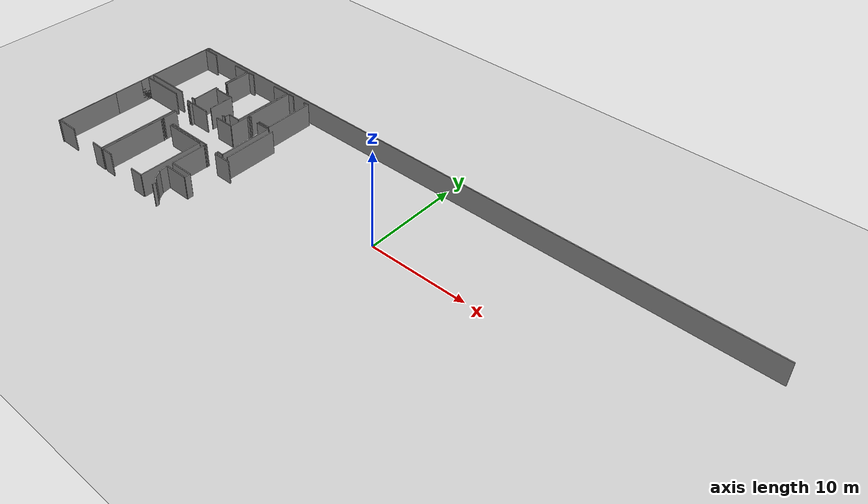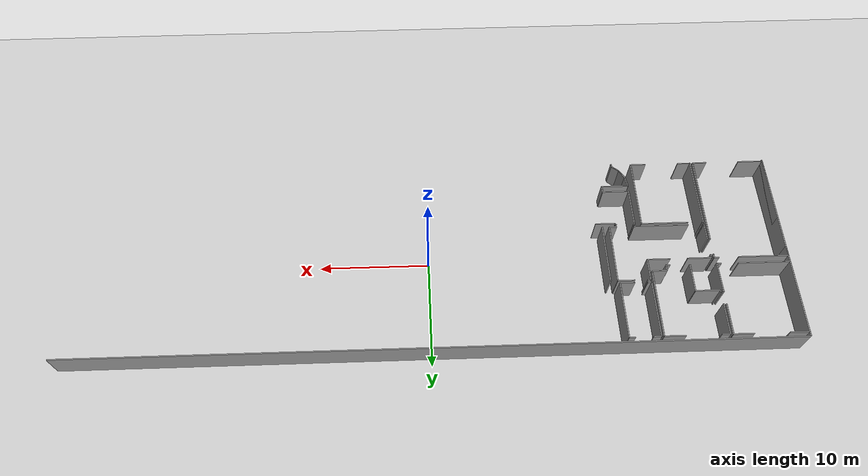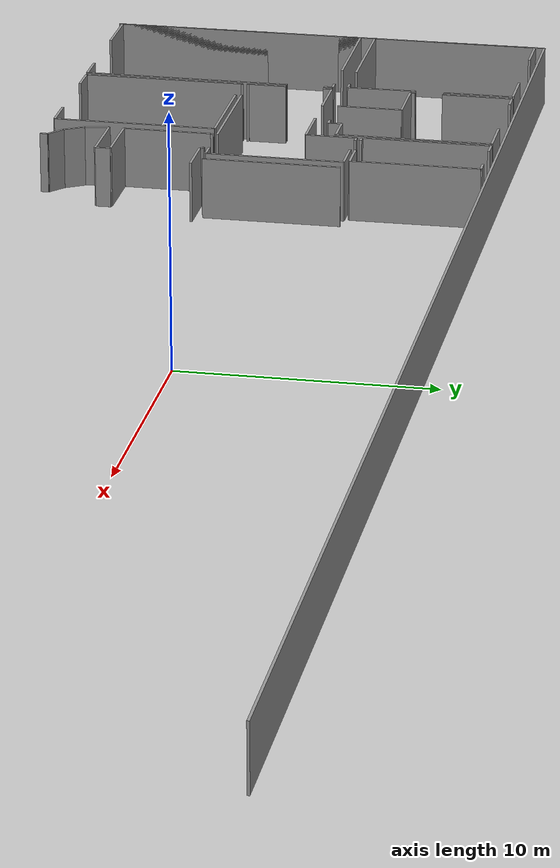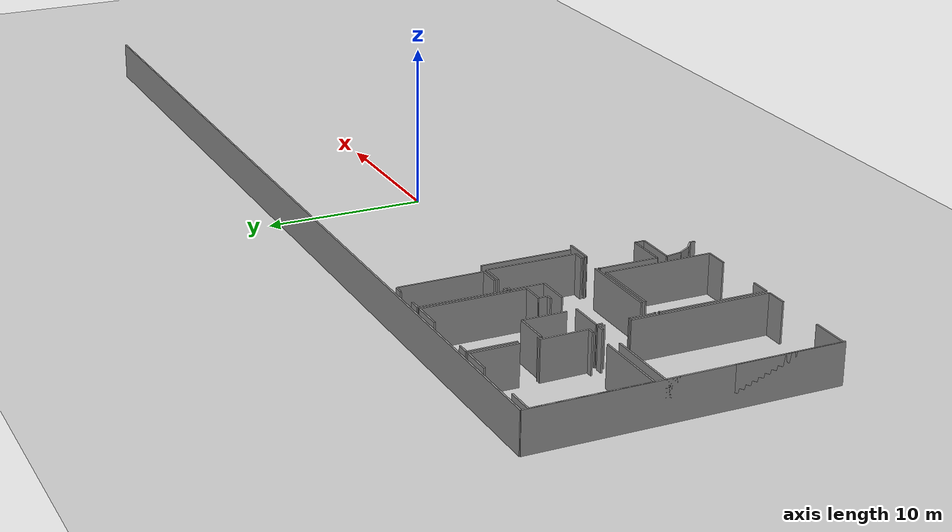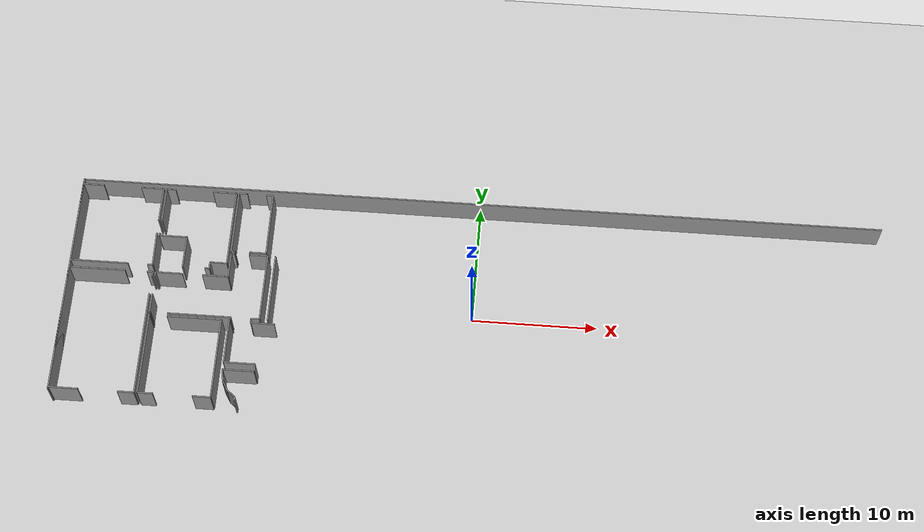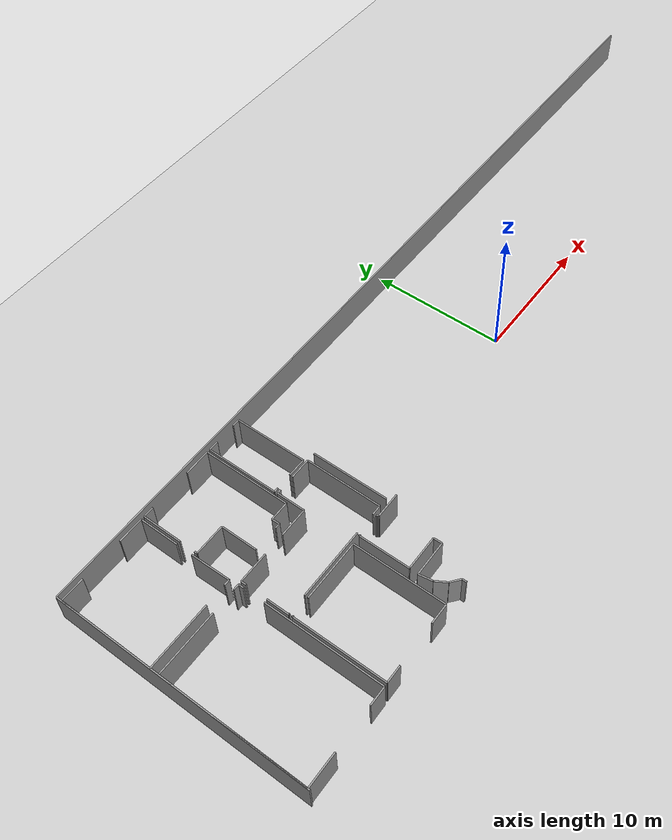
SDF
<sdf version="1.6">
 <world name="default">
  <model name="ground_plane">
   <static>1</static>
   <link name="link">
    <collision name="collision">
     <geometry><plane><normal>0 0 1</normal><size>100 100</size></plane></geometry>
     <surface><friction><ode><mu>100</mu><mu2>50</mu2></ode></friction></surface>
    </collision>
    <visual name="visual">
     <cast_shadows>0</cast_shadows>
     <geometry><plane><normal>0 0 1</normal><size>100 100</size></plane></geometry>
     <material>
      <script><uri>file://media/materials/scripts/gazebo.material</uri><name>Gazebo/Grey</name></script>
     </material>
    </visual>
   </link>
  </model>
  <model name="0510034869_A-40">
   <static>1</static>
   <link name="Wall_0">
    <collision name="Wall_0_Collision">
     <geometry><box><size>0.420571428571 0.1 2.5</size></box></geometry>
     <pose>0.210285714286 0 1.25 0 0 0</pose>
    </collision>
    <visual name="Wall_0_Visual">
     <pose>0.210285714286 0 1.25 0 0 0</pose>
     <geometry><box><size>0.420571428571 0.1 2.5</size></box></geometry>
     <material>
      <script><uri>file://media/materials/scripts/gazebo.material</uri><name>Gazebo/Grey</name></script>
      <ambient>1 1 1 1</ambient>
     </material>
    </visual>
    <pose>6.64774603175 -7.3233015873 0 0 0 3.14159265359</pose>
   </link>
   <link name="Wall_1">
    <collision name="Wall_1_Collision">
     <geometry><box><size>4.67136507937 0.1 2.5</size></box></geometry>
     <pose>2.33568253968 0 1.25 0 0 0</pose>
    </collision>
    <visual name="Wall_1_Visual">
     <pose>2.33568253968 0 1.25 0 0 0</pose>
     <geometry><box><size>4.67136507937 0.1 2.5</size></box></geometry>
     <material>
      <script><uri>file://media/materials/scripts/gazebo.material</uri><name>Gazebo/Grey</name></script>
      <ambient>1 1 1 1</ambient>
     </material>
    </visual>
    <pose>4.67466666667 -7.3233015873 0 0 0 3.14159265359</pose>
   </link>
   <link name="Wall_2">
    <collision name="Wall_2_Collision">
     <geometry><box><size>6.91466666667 0.1 2.5</size></box></geometry>
     <pose>3.45733333333 0 1.25 0 0 0</pose>
    </collision>
    <visual name="Wall_2_Visual">
     <pose>3.45733333333 0 1.25 0 0 0</pose>
     <geometry><box><size>6.91466666667 0.1 2.5</size></box></geometry>
     <material>
      <script><uri>file://media/materials/scripts/gazebo.material</uri><name>Gazebo/Grey</name></script>
      <ambient>1 1 1 1</ambient>
     </material>
    </visual>
    <pose>0.00330158730159 -7.3233015873 0 0 0 1.57079632679</pose>
   </link>
   <link name="Wall_3">
    <collision name="Wall_3_Collision">
     <geometry><box><size>1.69777777778 0.1 2.5</size></box></geometry>
     <pose>0.848888888889 0 1.25 0 0 0</pose>
    </collision>
    <visual name="Wall_3_Visual">
     <pose>0.848888888889 0 1.25 0 0 0</pose>
     <geometry><box><size>1.69777777778 0.1 2.5</size></box></geometry>
     <material>
      <script><uri>file://media/materials/scripts/gazebo.material</uri><name>Gazebo/Grey</name></script>
      <ambient>1 1 1 1</ambient>
     </material>
    </visual>
    <pose>0.00330158730159 -0.408634920635 0 0 0 0.0</pose>
   </link>
   <link name="Wall_4">
    <collision name="Wall_4_Collision">
     <geometry><box><size>1.82806349206 0.1 2.5</size></box></geometry>
     <pose>0.914031746032 0 1.25 0 0 0</pose>
    </collision>
    <visual name="Wall_4_Visual">
     <pose>0.914031746032 0 1.25 0 0 0</pose>
     <geometry><box><size>1.82806349206 0.1 2.5</size></box></geometry>
     <material>
      <script><uri>file://media/materials/scripts/gazebo.material</uri><name>Gazebo/Grey</name></script>
      <ambient>1 1 1 1</ambient>
     </material>
    </visual>
    <pose>4.77066666667 -0.408634920635 0 0 0 0.0</pose>
   </link>
   <link name="Wall_5">
    <collision name="Wall_5_Collision">
     <geometry><box><size>2.88965079365 0.1 2.5</size></box></geometry>
     <pose>1.44482539683 0 1.25 0 0 0</pose>
    </collision>
    <visual name="Wall_5_Visual">
     <pose>1.44482539683 0 1.25 0 0 0</pose>
     <geometry><box><size>2.88965079365 0.1 2.5</size></box></geometry>
     <material>
      <script><uri>file://media/materials/scripts/gazebo.material</uri><name>Gazebo/Grey</name></script>
      <ambient>1 1 1 1</ambient>
     </material>
    </visual>
    <pose>6.59873015873 -0.408634920635 0 0 0 -1.57079632679</pose>
   </link>
   <link name="Wall_6">
    <collision name="Wall_6_Collision">
     <geometry><box><size>2.86632389309 0.1 2.5</size></box></geometry>
     <pose>1.43316194655 0 1.25 0 0 0</pose>
    </collision>
    <visual name="Wall_6_Visual">
     <pose>1.43316194655 0 1.25 0 0 0</pose>
     <geometry><box><size>2.86632389309 0.1 2.5</size></box></geometry>
     <material>
      <script><uri>file://media/materials/scripts/gazebo.material</uri><name>Gazebo/Grey</name></script>
      <ambient>1 1 1 1</ambient>
     </material>
    </visual>
    <pose>6.59873015873 -4.4573968254 0 0 0 -1.55369488812</pose>
   </link>
   <link name="Wall_7">
    <collision name="Wall_7_Collision">
     <geometry><box><size>0.36419047619 0.1 2.5</size></box></geometry>
     <pose>0.182095238095 0 1.25 0 0 0</pose>
    </collision>
    <visual name="Wall_7_Visual">
     <pose>0.182095238095 0 1.25 0 0 0</pose>
     <geometry><box><size>0.36419047619 0.1 2.5</size></box></geometry>
     <material>
      <script><uri>file://media/materials/scripts/gazebo.material</uri><name>Gazebo/Grey</name></script>
      <ambient>1 1 1 1</ambient>
     </material>
    </visual>
    <pose>11.2278095238 -7.3233015873 0 0 0 3.14159265359</pose>
   </link>
   <link name="Wall_8">
    <collision name="Wall_8_Collision">
     <geometry><box><size>2.66184126984 0.1 2.5</size></box></geometry>
     <pose>1.33092063492 0 1.25 0 0 0</pose>
    </collision>
    <visual name="Wall_8_Visual">
     <pose>1.33092063492 0 1.25 0 0 0</pose>
     <geometry><box><size>2.66184126984 0.1 2.5</size></box></geometry>
     <material>
      <script><uri>file://media/materials/scripts/gazebo.material</uri><name>Gazebo/Grey</name></script>
      <ambient>1 1 1 1</ambient>
     </material>
    </visual>
    <pose>9.06831746032 -7.3233015873 0 0 0 1.57079632679</pose>
   </link>
   <link name="Wall_9">
    <collision name="Wall_9_Collision">
     <geometry><box><size>2.22222222222 0.1 2.5</size></box></geometry>
     <pose>1.11111111111 0 1.25 0 0 0</pose>
    </collision>
    <visual name="Wall_9_Visual">
     <pose>1.11111111111 0 1.25 0 0 0</pose>
     <geometry><box><size>2.22222222222 0.1 2.5</size></box></geometry>
     <material>
      <script><uri>file://media/materials/scripts/gazebo.material</uri><name>Gazebo/Grey</name></script>
      <ambient>1 1 1 1</ambient>
     </material>
    </visual>
    <pose>9.06831746032 -4.66146031746 0 0 0 3.14159265359</pose>
   </link>
   <link name="Wall_10">
    <collision name="Wall_10_Collision">
     <geometry><box><size>0.209015873016 0.1 2.5</size></box></geometry>
     <pose>0.104507936508 0 1.25 0 0 0</pose>
    </collision>
    <visual name="Wall_10_Visual">
     <pose>0.104507936508 0 1.25 0 0 0</pose>
     <geometry><box><size>0.209015873016 0.1 2.5</size></box></geometry>
     <material>
      <script><uri>file://media/materials/scripts/gazebo.material</uri><name>Gazebo/Grey</name></script>
      <ambient>1 1 1 1</ambient>
     </material>
    </visual>
    <pose>6.8460952381 -4.66146031746 0 0 0 1.57079632679</pose>
   </link>
   <link name="Wall_11">
    <collision name="Wall_11_Collision">
     <geometry><box><size>2.91098412698 0.1 2.5</size></box></geometry>
     <pose>1.45549206349 0 1.25 0 0 0</pose>
    </collision>
    <visual name="Wall_11_Visual">
     <pose>1.45549206349 0 1.25 0 0 0</pose>
     <geometry><box><size>2.91098412698 0.1 2.5</size></box></geometry>
     <material>
      <script><uri>file://media/materials/scripts/gazebo.material</uri><name>Gazebo/Grey</name></script>
      <ambient>1 1 1 1</ambient>
     </material>
    </visual>
    <pose>6.8460952381 -3.31936507937 0 0 0 1.57079632679</pose>
   </link>
   <link name="Wall_12">
    <collision name="Wall_12_Collision">
     <geometry><box><size>0.750984126984 0.1 2.5</size></box></geometry>
     <pose>0.375492063492 0 1.25 0 0 0</pose>
    </collision>
    <visual name="Wall_12_Visual">
     <pose>0.375492063492 0 1.25 0 0 0</pose>
     <geometry><box><size>0.750984126984 0.1 2.5</size></box></geometry>
     <material>
      <script><uri>file://media/materials/scripts/gazebo.material</uri><name>Gazebo/Grey</name></script>
      <ambient>1 1 1 1</ambient>
     </material>
    </visual>
    <pose>6.8460952381 -0.408380952381 0 0 0 0.0</pose>
   </link>
   <link name="Wall_13">
    <collision name="Wall_13_Collision">
     <geometry><box><size>1.90501587302 0.1 2.5</size></box></geometry>
     <pose>0.952507936508 0 1.25 0 0 0</pose>
    </collision>
    <visual name="Wall_13_Visual">
     <pose>0.952507936508 0 1.25 0 0 0</pose>
     <geometry><box><size>1.90501587302 0.1 2.5</size></box></geometry>
     <material>
      <script><uri>file://media/materials/scripts/gazebo.material</uri><name>Gazebo/Grey</name></script>
      <ambient>1 1 1 1</ambient>
     </material>
    </visual>
    <pose>10.6667936508 -0.408380952381 0 0 0 0.0</pose>
   </link>
   <link name="Wall_14">
    <collision name="Wall_14_Collision">
     <geometry><box><size>6.36177777778 0.1 2.5</size></box></geometry>
     <pose>3.18088888889 0 1.25 0 0 0</pose>
    </collision>
    <visual name="Wall_14_Visual">
     <pose>3.18088888889 0 1.25 0 0 0</pose>
     <geometry><box><size>6.36177777778 0.1 2.5</size></box></geometry>
     <material>
      <script><uri>file://media/materials/scripts/gazebo.material</uri><name>Gazebo/Grey</name></script>
      <ambient>1 1 1 1</ambient>
     </material>
    </visual>
    <pose>12.5718095238 -0.408380952381 0 0 0 -1.57079632679</pose>
   </link>
   <link name="Wall_15">
    <collision name="Wall_15_Collision">
     <geometry><box><size>1.35606349206 0.1 2.5</size></box></geometry>
     <pose>0.678031746032 0 1.25 0 0 0</pose>
    </collision>
    <visual name="Wall_15_Visual">
     <pose>0.678031746032 0 1.25 0 0 0</pose>
     <geometry><box><size>1.35606349206 0.1 2.5</size></box></geometry>
     <material>
      <script><uri>file://media/materials/scripts/gazebo.material</uri><name>Gazebo/Grey</name></script>
      <ambient>1 1 1 1</ambient>
     </material>
    </visual>
    <pose>12.5718095238 -6.77015873016 0 0 0 3.14159265359</pose>
   </link>
   <link name="Wall_16">
    <collision name="Wall_16_Collision">
     <geometry><box><size>0.553274387848 0.1 2.5</size></box></geometry>
     <pose>0.276637193924 0 1.25 0 0 0</pose>
    </collision>
    <visual name="Wall_16_Visual">
     <pose>0.276637193924 0 1.25 0 0 0</pose>
     <geometry><box><size>0.553274387848 0.1 2.5</size></box></geometry>
     <material>
      <script><uri>file://media/materials/scripts/gazebo.material</uri><name>Gazebo/Grey</name></script>
      <ambient>1 1 1 1</ambient>
     </material>
    </visual>
    <pose>11.2157460317 -6.77015873016 0 0 0 -1.54899078442</pose>
   </link>
   <link name="Wall_17">
    <collision name="Wall_17_Collision">
     <geometry><box><size>1.31847619048 0.1 2.5</size></box></geometry>
     <pose>0.659238095238 0 1.25 0 0 0</pose>
    </collision>
    <visual name="Wall_17_Visual">
     <pose>0.659238095238 0 1.25 0 0 0</pose>
     <geometry><box><size>1.31847619048 0.1 2.5</size></box></geometry>
     <material>
      <script><uri>file://media/materials/scripts/gazebo.material</uri><name>Gazebo/Grey</name></script>
      <ambient>1 1 1 1</ambient>
     </material>
    </visual>
    <pose>6.74374603175 -18.4038095238 0 0 0 3.14159265359</pose>
   </link>
   <link name="Wall_18">
    <collision name="Wall_18_Collision">
     <geometry><box><size>2.33320634921 0.1 2.5</size></box></geometry>
     <pose>1.1666031746 0 1.25 0 0 0</pose>
    </collision>
    <visual name="Wall_18_Visual">
     <pose>1.1666031746 0 1.25 0 0 0</pose>
     <geometry><box><size>2.33320634921 0.1 2.5</size></box></geometry>
     <material>
      <script><uri>file://media/materials/scripts/gazebo.material</uri><name>Gazebo/Grey</name></script>
      <ambient>1 1 1 1</ambient>
     </material>
    </visual>
    <pose>2.33320634921 -18.4038095238 0 0 0 3.14159265359</pose>
   </link>
   <link name="Wall_19">
    <collision name="Wall_19_Collision">
     <geometry><box><size>6.41676190476 0.1 2.5</size></box></geometry>
     <pose>3.20838095238 0 1.25 0 0 0</pose>
    </collision>
    <visual name="Wall_19_Visual">
     <pose>3.20838095238 0 1.25 0 0 0</pose>
     <geometry><box><size>6.41676190476 0.1 2.5</size></box></geometry>
     <material>
      <script><uri>file://media/materials/scripts/gazebo.material</uri><name>Gazebo/Grey</name></script>
      <ambient>1 1 1 1</ambient>
     </material>
    </visual>
    <pose>0.0 -18.4038095238 0 0 0 1.57079632679</pose>
   </link>
   <link name="Wall_20">
    <collision name="Wall_20_Collision">
     <geometry><box><size>0.951111111111 0.1 2.5</size></box></geometry>
     <pose>0.475555555556 0 1.25 0 0 0</pose>
    </collision>
    <visual name="Wall_20_Visual">
     <pose>0.475555555556 0 1.25 0 0 0</pose>
     <geometry><box><size>0.951111111111 0.1 2.5</size></box></geometry>
     <material>
      <script><uri>file://media/materials/scripts/gazebo.material</uri><name>Gazebo/Grey</name></script>
      <ambient>1 1 1 1</ambient>
     </material>
    </visual>
    <pose>0.0 -8.90323809524 0 0 0 1.57079632679</pose>
   </link>
   <link name="Wall_21">
    <collision name="Wall_21_Collision">
     <geometry><box><size>4.52914285714 0.1 2.5</size></box></geometry>
     <pose>2.26457142857 0 1.25 0 0 0</pose>
    </collision>
    <visual name="Wall_21_Visual">
     <pose>2.26457142857 0 1.25 0 0 0</pose>
     <geometry><box><size>4.52914285714 0.1 2.5</size></box></geometry>
     <material>
      <script><uri>file://media/materials/scripts/gazebo.material</uri><name>Gazebo/Grey</name></script>
      <ambient>1 1 1 1</ambient>
     </material>
    </visual>
    <pose>0.0 -7.95212698413 0 0 0 0.0</pose>
   </link>
   <link name="Wall_22">
    <collision name="Wall_22_Collision">
     <geometry><box><size>0.44419047619 0.1 2.5</size></box></geometry>
     <pose>0.222095238095 0 1.25 0 0 0</pose>
    </collision>
    <visual name="Wall_22_Visual">
     <pose>0.222095238095 0 1.25 0 0 0</pose>
     <geometry><box><size>0.44419047619 0.1 2.5</size></box></geometry>
     <material>
      <script><uri>file://media/materials/scripts/gazebo.material</uri><name>Gazebo/Grey</name></script>
      <ambient>1 1 1 1</ambient>
     </material>
    </visual>
    <pose>6.3020952381 -7.95212698413 0 0 0 0.0</pose>
   </link>
   <link name="Wall_23">
    <collision name="Wall_23_Collision">
     <geometry><box><size>0.371047619048 0.1 2.5</size></box></geometry>
     <pose>0.185523809524 0 1.25 0 0 0</pose>
    </collision>
    <visual name="Wall_23_Visual">
     <pose>0.185523809524 0 1.25 0 0 0</pose>
     <geometry><box><size>0.371047619048 0.1 2.5</size></box></geometry>
     <material>
      <script><uri>file://media/materials/scripts/gazebo.material</uri><name>Gazebo/Grey</name></script>
      <ambient>1 1 1 1</ambient>
     </material>
    </visual>
    <pose>6.74628571429 -7.95212698413 0 0 0 -1.57079632679</pose>
   </link>
   <link name="Wall_24">
    <collision name="Wall_24_Collision">
     <geometry><box><size>8.53485752072 0.1 2.5</size></box></geometry>
     <pose>4.26742876036 0 1.25 0 0 0</pose>
    </collision>
    <visual name="Wall_24_Visual">
     <pose>4.26742876036 0 1.25 0 0 0</pose>
     <geometry><box><size>8.53485752072 0.1 2.5</size></box></geometry>
     <material>
      <script><uri>file://media/materials/scripts/gazebo.material</uri><name>Gazebo/Grey</name></script>
      <ambient>1 1 1 1</ambient>
     </material>
    </visual>
    <pose>6.74628571429 -9.86895238095 0 0 0 -1.5710938927</pose>
   </link>
   <link name="Wall_25">
    <collision name="Wall_25_Collision">
     <geometry><box><size>1.43657142857 0.1 2.5</size></box></geometry>
     <pose>0.718285714286 0 1.25 0 0 0</pose>
    </collision>
    <visual name="Wall_25_Visual">
     <pose>0.718285714286 0 1.25 0 0 0</pose>
     <geometry><box><size>1.43657142857 0.1 2.5</size></box></geometry>
     <material>
      <script><uri>file://media/materials/scripts/gazebo.material</uri><name>Gazebo/Grey</name></script>
      <ambient>1 1 1 1</ambient>
     </material>
    </visual>
    <pose>12.7459047619 -18.3851428571 0 0 0 3.14159265359</pose>
   </link>
   <link name="Wall_26">
    <collision name="Wall_26_Collision">
     <geometry><box><size>1.21219047619 0.1 2.5</size></box></geometry>
     <pose>0.606095238095 0 1.25 0 0 0</pose>
    </collision>
    <visual name="Wall_26_Visual">
     <pose>0.606095238095 0 1.25 0 0 0</pose>
     <geometry><box><size>1.21219047619 0.1 2.5</size></box></geometry>
     <material>
      <script><uri>file://media/materials/scripts/gazebo.material</uri><name>Gazebo/Grey</name></script>
      <ambient>1 1 1 1</ambient>
     </material>
    </visual>
    <pose>8.20952380952 -18.3851428571 0 0 0 3.14159265359</pose>
   </link>
   <link name="Wall_27">
    <collision name="Wall_27_Collision">
     <geometry><box><size>6.65536507937 0.1 2.5</size></box></geometry>
     <pose>3.32768253968 0 1.25 0 0 0</pose>
    </collision>
    <visual name="Wall_27_Visual">
     <pose>3.32768253968 0 1.25 0 0 0</pose>
     <geometry><box><size>6.65536507937 0.1 2.5</size></box></geometry>
     <material>
      <script><uri>file://media/materials/scripts/gazebo.material</uri><name>Gazebo/Grey</name></script>
      <ambient>1 1 1 1</ambient>
     </material>
    </visual>
    <pose>6.99733333333 -18.3851428571 0 0 0 1.57079632679</pose>
   </link>
   <link name="Wall_28">
    <collision name="Wall_28_Collision">
     <geometry><box><size>0.0913015873016 0.1 2.5</size></box></geometry>
     <pose>0.0456507936508 0 1.25 0 0 0</pose>
    </collision>
    <visual name="Wall_28_Visual">
     <pose>0.0456507936508 0 1.25 0 0 0</pose>
     <geometry><box><size>0.0913015873016 0.1 2.5</size></box></geometry>
     <material>
      <script><uri>file://media/materials/scripts/gazebo.material</uri><name>Gazebo/Grey</name></script>
      <ambient>1 1 1 1</ambient>
     </material>
    </visual>
    <pose>6.99733333333 -11.7297777778 0 0 0 0.0</pose>
   </link>
   <link name="Wall_29">
    <collision name="Wall_29_Collision">
     <geometry><box><size>4.31771428571 0.1 2.5</size></box></geometry>
     <pose>2.15885714286 0 1.25 0 0 0</pose>
    </collision>
    <visual name="Wall_29_Visual">
     <pose>2.15885714286 0 1.25 0 0 0</pose>
     <geometry><box><size>4.31771428571 0.1 2.5</size></box></geometry>
     <material>
      <script><uri>file://media/materials/scripts/gazebo.material</uri><name>Gazebo/Grey</name></script>
      <ambient>1 1 1 1</ambient>
     </material>
    </visual>
    <pose>8.43365079365 -11.7297777778 0 0 0 0.0</pose>
   </link>
   <link name="Wall_30">
    <collision name="Wall_30_Collision">
     <geometry><box><size>6.65536731929 0.1 2.5</size></box></geometry>
     <pose>3.32768365965 0 1.25 0 0 0</pose>
    </collision>
    <visual name="Wall_30_Visual">
     <pose>3.32768365965 0 1.25 0 0 0</pose>
     <geometry><box><size>6.65536731929 0.1 2.5</size></box></geometry>
     <material>
      <script><uri>file://media/materials/scripts/gazebo.material</uri><name>Gazebo/Grey</name></script>
      <ambient>1 1 1 1</ambient>
     </material>
    </visual>
    <pose>12.7513650794 -11.7297777778 0 0 0 -1.57161676507</pose>
   </link>
   <link name="Wall_31">
    <collision name="Wall_31_Collision">
     <geometry><box><size>0.70146031746 0.1 2.5</size></box></geometry>
     <pose>0.35073015873 0 1.25 0 0 0</pose>
    </collision>
    <visual name="Wall_31_Visual">
     <pose>0.35073015873 0 1.25 0 0 0</pose>
     <geometry><box><size>0.70146031746 0.1 2.5</size></box></geometry>
     <material>
      <script><uri>file://media/materials/scripts/gazebo.material</uri><name>Gazebo/Grey</name></script>
      <ambient>1 1 1 1</ambient>
     </material>
    </visual>
    <pose>15.7603809524 -11.4805079365 0 0 0 3.14159265359</pose>
   </link>
   <link name="Wall_32">
    <collision name="Wall_32_Collision">
     <geometry><box><size>5.05282539683 0.1 2.5</size></box></geometry>
     <pose>2.52641269841 0 1.25 0 0 0</pose>
    </collision>
    <visual name="Wall_32_Visual">
     <pose>2.52641269841 0 1.25 0 0 0</pose>
     <geometry><box><size>5.05282539683 0.1 2.5</size></box></geometry>
     <material>
      <script><uri>file://media/materials/scripts/gazebo.material</uri><name>Gazebo/Grey</name></script>
      <ambient>1 1 1 1</ambient>
     </material>
    </visual>
    <pose>13.4857142857 -11.4805079365 0 0 0 3.14159265359</pose>
   </link>
   <link name="Wall_33">
    <collision name="Wall_33_Collision">
     <geometry><box><size>0.088253968254 0.1 2.5</size></box></geometry>
     <pose>0.044126984127 0 1.25 0 0 0</pose>
    </collision>
    <visual name="Wall_33_Visual">
     <pose>0.044126984127 0 1.25 0 0 0</pose>
     <geometry><box><size>0.088253968254 0.1 2.5</size></box></geometry>
     <material>
      <script><uri>file://media/materials/scripts/gazebo.material</uri><name>Gazebo/Grey</name></script>
      <ambient>1 1 1 1</ambient>
     </material>
    </visual>
    <pose>7.07022222222 -11.4805079365 0 0 0 3.14159265359</pose>
   </link>
   <link name="Wall_34">
    <collision name="Wall_34_Collision">
     <geometry><box><size>1.60431746032 0.1 2.5</size></box></geometry>
     <pose>0.802158730159 0 1.25 0 0 0</pose>
    </collision>
    <visual name="Wall_34_Visual">
     <pose>0.802158730159 0 1.25 0 0 0</pose>
     <geometry><box><size>1.60431746032 0.1 2.5</size></box></geometry>
     <material>
      <script><uri>file://media/materials/scripts/gazebo.material</uri><name>Gazebo/Grey</name></script>
      <ambient>1 1 1 1</ambient>
     </material>
    </visual>
    <pose>6.98196825397 -11.4805079365 0 0 0 1.57079632679</pose>
   </link>
   <link name="Wall_35">
    <collision name="Wall_35_Collision">
     <geometry><box><size>0.366095238095 0.1 2.5</size></box></geometry>
     <pose>0.183047619048 0 1.25 0 0 0</pose>
    </collision>
    <visual name="Wall_35_Visual">
     <pose>0.183047619048 0 1.25 0 0 0</pose>
     <geometry><box><size>0.366095238095 0.1 2.5</size></box></geometry>
     <material>
      <script><uri>file://media/materials/scripts/gazebo.material</uri><name>Gazebo/Grey</name></script>
      <ambient>1 1 1 1</ambient>
     </material>
    </visual>
    <pose>6.98196825397 -8.31263492063 0 0 0 1.57079632679</pose>
   </link>
   <link name="Wall_36">
    <collision name="Wall_36_Collision">
     <geometry><box><size>2.18082539683 0.1 2.5</size></box></geometry>
     <pose>1.09041269841 0 1.25 0 0 0</pose>
    </collision>
    <visual name="Wall_36_Visual">
     <pose>1.09041269841 0 1.25 0 0 0</pose>
     <geometry><box><size>2.18082539683 0.1 2.5</size></box></geometry>
     <material>
      <script><uri>file://media/materials/scripts/gazebo.material</uri><name>Gazebo/Grey</name></script>
      <ambient>1 1 1 1</ambient>
     </material>
    </visual>
    <pose>6.98196825397 -7.94653968254 0 0 0 0.0</pose>
   </link>
   <link name="Wall_37">
    <collision name="Wall_37_Collision">
     <geometry><box><size>2.0766984127 0.1 2.5</size></box></geometry>
     <pose>1.03834920635 0 1.25 0 0 0</pose>
    </collision>
    <visual name="Wall_37_Visual">
     <pose>1.03834920635 0 1.25 0 0 0</pose>
     <geometry><box><size>2.0766984127 0.1 2.5</size></box></geometry>
     <material>
      <script><uri>file://media/materials/scripts/gazebo.material</uri><name>Gazebo/Grey</name></script>
      <ambient>1 1 1 1</ambient>
     </material>
    </visual>
    <pose>10.7473015873 -7.94653968254 0 0 0 0.0</pose>
   </link>
   <link name="Wall_38">
    <collision name="Wall_38_Collision">
     <geometry><box><size>2.06349206349 0.1 2.5</size></box></geometry>
     <pose>1.03174603175 0 1.25 0 0 0</pose>
    </collision>
    <visual name="Wall_38_Visual">
     <pose>1.03174603175 0 1.25 0 0 0</pose>
     <geometry><box><size>2.06349206349 0.1 2.5</size></box></geometry>
     <material>
      <script><uri>file://media/materials/scripts/gazebo.material</uri><name>Gazebo/Grey</name></script>
      <ambient>1 1 1 1</ambient>
     </material>
    </visual>
    <pose>12.824 -7.94653968254 0 0 0 1.57079632679</pose>
   </link>
   <link name="Wall_39">
    <collision name="Wall_39_Collision">
     <geometry><box><size>0.283047619048 0.1 2.5</size></box></geometry>
     <pose>0.141523809524 0 1.25 0 0 0</pose>
    </collision>
    <visual name="Wall_39_Visual">
     <pose>0.141523809524 0 1.25 0 0 0</pose>
     <geometry><box><size>0.283047619048 0.1 2.5</size></box></geometry>
     <material>
      <script><uri>file://media/materials/scripts/gazebo.material</uri><name>Gazebo/Grey</name></script>
      <ambient>1 1 1 1</ambient>
     </material>
    </visual>
    <pose>12.824 -5.88304761905 0 0 0 0.0</pose>
   </link>
   <link name="Wall_40">
    <collision name="Wall_40_Collision">
     <geometry><box><size>1.51707936508 0.1 2.5</size></box></geometry>
     <pose>0.75853968254 0 1.25 0 0 0</pose>
    </collision>
    <visual name="Wall_40_Visual">
     <pose>0.75853968254 0 1.25 0 0 0</pose>
     <geometry><box><size>1.51707936508 0.1 2.5</size></box></geometry>
     <material>
      <script><uri>file://media/materials/scripts/gazebo.material</uri><name>Gazebo/Grey</name></script>
      <ambient>1 1 1 1</ambient>
     </material>
    </visual>
    <pose>14.261968254 -5.88304761905 0 0 0 0.0</pose>
   </link>
   <link name="Wall_41">
    <collision name="Wall_41_Collision">
     <geometry><box><size>5.5974914426 0.1 2.5</size></box></geometry>
     <pose>2.7987457213 0 1.25 0 0 0</pose>
    </collision>
    <visual name="Wall_41_Visual">
     <pose>2.7987457213 0 1.25 0 0 0</pose>
     <geometry><box><size>5.5974914426 0.1 2.5</size></box></geometry>
     <material>
      <script><uri>file://media/materials/scripts/gazebo.material</uri><name>Gazebo/Grey</name></script>
      <ambient>1 1 1 1</ambient>
     </material>
    </visual>
    <pose>15.779047619 -5.88304761905 0 0 0 -1.57413116017</pose>
   </link>
   <link name="Wall_42">
    <collision name="Wall_42_Collision">
     <geometry><box><size>1.34082539683 0.1 2.5</size></box></geometry>
     <pose>0.670412698413 0 1.25 0 0 0</pose>
    </collision>
    <visual name="Wall_42_Visual">
     <pose>0.670412698413 0 1.25 0 0 0</pose>
     <geometry><box><size>1.34082539683 0.1 2.5</size></box></geometry>
     <material>
      <script><uri>file://media/materials/scripts/gazebo.material</uri><name>Gazebo/Grey</name></script>
      <ambient>1 1 1 1</ambient>
     </material>
    </visual>
    <pose>15.6168888889 -5.66463492063 0 0 0 3.14159265359</pose>
   </link>
   <link name="Wall_43">
    <collision name="Wall_43_Collision">
     <geometry><box><size>0.331174603175 0.1 2.5</size></box></geometry>
     <pose>0.165587301587 0 1.25 0 0 0</pose>
    </collision>
    <visual name="Wall_43_Visual">
     <pose>0.165587301587 0 1.25 0 0 0</pose>
     <geometry><box><size>0.331174603175 0.1 2.5</size></box></geometry>
     <material>
      <script><uri>file://media/materials/scripts/gazebo.material</uri><name>Gazebo/Grey</name></script>
      <ambient>1 1 1 1</ambient>
     </material>
    </visual>
    <pose>13.1212698413 -5.66463492063 0 0 0 3.14159265359</pose>
   </link>
   <link name="Wall_44">
    <collision name="Wall_44_Collision">
     <geometry><box><size>5.26501587302 0.1 2.5</size></box></geometry>
     <pose>2.63250793651 0 1.25 0 0 0</pose>
    </collision>
    <visual name="Wall_44_Visual">
     <pose>2.63250793651 0 1.25 0 0 0</pose>
     <geometry><box><size>5.26501587302 0.1 2.5</size></box></geometry>
     <material>
      <script><uri>file://media/materials/scripts/gazebo.material</uri><name>Gazebo/Grey</name></script>
      <ambient>1 1 1 1</ambient>
     </material>
    </visual>
    <pose>12.7900952381 -5.66463492063 0 0 0 1.57079632679</pose>
   </link>
   <link name="Wall_45">
    <collision name="Wall_45_Collision">
     <geometry><box><size>0.702476190476 0.1 2.5</size></box></geometry>
     <pose>0.351238095238 0 1.25 0 0 0</pose>
    </collision>
    <visual name="Wall_45_Visual">
     <pose>0.351238095238 0 1.25 0 0 0</pose>
     <geometry><box><size>0.702476190476 0.1 2.5</size></box></geometry>
     <material>
      <script><uri>file://media/materials/scripts/gazebo.material</uri><name>Gazebo/Grey</name></script>
      <ambient>1 1 1 1</ambient>
     </material>
    </visual>
    <pose>12.7900952381 -0.399619047619 0 0 0 0.0</pose>
   </link>
   <link name="Wall_46">
    <collision name="Wall_46_Collision">
     <geometry><box><size>0.549206349206 0.1 2.5</size></box></geometry>
     <pose>0.274603174603 0 1.25 0 0 0</pose>
    </collision>
    <visual name="Wall_46_Visual">
     <pose>0.274603174603 0 1.25 0 0 0</pose>
     <geometry><box><size>0.549206349206 0.1 2.5</size></box></geometry>
     <material>
      <script><uri>file://media/materials/scripts/gazebo.material</uri><name>Gazebo/Grey</name></script>
      <ambient>1 1 1 1</ambient>
     </material>
    </visual>
    <pose>15.0342857143 -0.399619047619 0 0 0 0.0</pose>
   </link>
   <link name="Wall_47">
    <collision name="Wall_47_Collision">
     <geometry><box><size>5.26512179261 0.1 2.5</size></box></geometry>
     <pose>2.63256089631 0 1.25 0 0 0</pose>
    </collision>
    <visual name="Wall_47_Visual">
     <pose>2.63256089631 0 1.25 0 0 0</pose>
     <geometry><box><size>5.26512179261 0.1 2.5</size></box></geometry>
     <material>
      <script><uri>file://media/materials/scripts/gazebo.material</uri><name>Gazebo/Grey</name></script>
      <ambient>1 1 1 1</ambient>
     </material>
    </visual>
    <pose>15.5834920635 -0.399619047619 0 0 0 -1.56445325428</pose>
   </link>
   <link name="Wall_49">
    <collision name="Wall_49_Collision">
     <geometry><box><size>0.316952380952 0.1 2.5</size></box></geometry>
     <pose>0.158476190476 0 1.25 0 0 0</pose>
    </collision>
    <visual name="Wall_49_Visual">
     <pose>0.158476190476 0 1.25 0 0 0</pose>
     <geometry><box><size>0.316952380952 0.1 2.5</size></box></geometry>
     <material>
      <script><uri>file://media/materials/scripts/gazebo.material</uri><name>Gazebo/Grey</name></script>
      <ambient>1 1 1 1</ambient>
     </material>
    </visual>
    <pose>14.6113015873 -18.5479365079 0 0 0 1.57079632679</pose>
   </link>
   <link name="Wall_50">
    <collision name="Wall_50_Collision">
     <geometry><box><size>0.798795899079 0.1 2.5</size></box></geometry>
     <pose>0.399397949539 0 1.25 0 0 0</pose>
    </collision>
    <visual name="Wall_50_Visual">
     <pose>0.399397949539 0 1.25 0 0 0</pose>
     <geometry><box><size>0.798795899079 0.1 2.5</size></box></geometry>
     <material>
      <script><uri>file://media/materials/scripts/gazebo.material</uri><name>Gazebo/Grey</name></script>
      <ambient>1 1 1 1</ambient>
     </material>
    </visual>
    <pose>14.6113015873 -18.230984127 0 0 0 2.45697046285</pose>
   </link>
   <link name="Wall_51">
    <collision name="Wall_51_Collision">
     <geometry><box><size>0.902953277761 0.1 2.5</size></box></geometry>
     <pose>0.45147663888 0 1.25 0 0 0</pose>
    </collision>
    <visual name="Wall_51_Visual">
     <pose>0.45147663888 0 1.25 0 0 0</pose>
     <geometry><box><size>0.902953277761 0.1 2.5</size></box></geometry>
     <material>
      <script><uri>file://media/materials/scripts/gazebo.material</uri><name>Gazebo/Grey</name></script>
      <ambient>1 1 1 1</ambient>
     </material>
    </visual>
    <pose>13.9925079365 -17.7258412698 0 0 0 2.10639217049</pose>
   </link>
   <link name="Wall_52">
    <collision name="Wall_52_Collision">
     <geometry><box><size>0.992218938933 0.1 2.5</size></box></geometry>
     <pose>0.496109469466 0 1.25 0 0 0</pose>
    </collision>
    <visual name="Wall_52_Visual">
     <pose>0.496109469466 0 1.25 0 0 0</pose>
     <geometry><box><size>0.992218938933 0.1 2.5</size></box></geometry>
     <material>
      <script><uri>file://media/materials/scripts/gazebo.material</uri><name>Gazebo/Grey</name></script>
      <ambient>1 1 1 1</ambient>
     </material>
    </visual>
    <pose>13.5316825397 -16.9493333333 0 0 0 1.73703907266</pose>
   </link>
   <link name="Wall_53">
    <collision name="Wall_53_Collision">
     <geometry><box><size>2.50006349206 0.1 2.5</size></box></geometry>
     <pose>1.25003174603 0 1.25 0 0 0</pose>
    </collision>
    <visual name="Wall_53_Visual">
     <pose>1.25003174603 0 1.25 0 0 0</pose>
     <geometry><box><size>2.50006349206 0.1 2.5</size></box></geometry>
     <material>
      <script><uri>file://media/materials/scripts/gazebo.material</uri><name>Gazebo/Grey</name></script>
      <ambient>1 1 1 1</ambient>
     </material>
    </visual>
    <pose>13.3674920635 -15.9707936508 0 0 0 0.0</pose>
   </link>
   <link name="Wall_54">
    <collision name="Wall_54_Collision">
     <geometry><box><size>0.614229152886 0.1 2.5</size></box></geometry>
     <pose>0.307114576443 0 1.25 0 0 0</pose>
    </collision>
    <visual name="Wall_54_Visual">
     <pose>0.307114576443 0 1.25 0 0 0</pose>
     <geometry><box><size>0.614229152886 0.1 2.5</size></box></geometry>
     <material>
      <script><uri>file://media/materials/scripts/gazebo.material</uri><name>Gazebo/Grey</name></script>
      <ambient>1 1 1 1</ambient>
     </material>
    </visual>
    <pose>15.8675555556 -15.9707936508 0 0 0 1.59167831996</pose>
   </link>
   <link name="Wall_55">
    <collision name="Wall_55_Collision">
     <geometry><box><size>2.46501587302 0.1 2.5</size></box></geometry>
     <pose>1.23250793651 0 1.25 0 0 0</pose>
    </collision>
    <visual name="Wall_55_Visual">
     <pose>1.23250793651 0 1.25 0 0 0</pose>
     <geometry><box><size>2.46501587302 0.1 2.5</size></box></geometry>
     <material>
      <script><uri>file://media/materials/scripts/gazebo.material</uri><name>Gazebo/Grey</name></script>
      <ambient>1 1 1 1</ambient>
     </material>
    </visual>
    <pose>15.8547301587 -15.3566984127 0 0 0 3.14159265359</pose>
   </link>
   <link name="Wall_56">
    <collision name="Wall_56_Collision">
     <geometry><box><size>3.65625396825 0.1 2.5</size></box></geometry>
     <pose>1.82812698413 0 1.25 0 0 0</pose>
    </collision>
    <visual name="Wall_56_Visual">
     <pose>1.82812698413 0 1.25 0 0 0</pose>
     <geometry><box><size>3.65625396825 0.1 2.5</size></box></geometry>
     <material>
      <script><uri>file://media/materials/scripts/gazebo.material</uri><name>Gazebo/Grey</name></script>
      <ambient>1 1 1 1</ambient>
     </material>
    </visual>
    <pose>13.3897142857 -15.3566984127 0 0 0 1.57079632679</pose>
   </link>
   <link name="Wall_57">
    <collision name="Wall_57_Collision">
     <geometry><box><size>0.0987936507936 0.1 2.5</size></box></geometry>
     <pose>0.0493968253968 0 1.25 0 0 0</pose>
    </collision>
    <visual name="Wall_57_Visual">
     <pose>0.0493968253968 0 1.25 0 0 0</pose>
     <geometry><box><size>0.0987936507936 0.1 2.5</size></box></geometry>
     <material>
      <script><uri>file://media/materials/scripts/gazebo.material</uri><name>Gazebo/Grey</name></script>
      <ambient>1 1 1 1</ambient>
     </material>
    </visual>
    <pose>13.3897142857 -11.7004444444 0 0 0 0.0</pose>
   </link>
   <link name="Wall_58">
    <collision name="Wall_58_Collision">
     <geometry><box><size>0.105650793651 0.1 2.5</size></box></geometry>
     <pose>0.0528253968254 0 1.25 0 0 0</pose>
    </collision>
    <visual name="Wall_58_Visual">
     <pose>0.0528253968254 0 1.25 0 0 0</pose>
     <geometry><box><size>0.105650793651 0.1 2.5</size></box></geometry>
     <material>
      <script><uri>file://media/materials/scripts/gazebo.material</uri><name>Gazebo/Grey</name></script>
      <ambient>1 1 1 1</ambient>
     </material>
    </visual>
    <pose>15.0493968254 -11.7004444444 0 0 0 0.0</pose>
   </link>
   <link name="Wall_59">
    <collision name="Wall_59_Collision">
     <geometry><box><size>0.135746031746 0.1 2.5</size></box></geometry>
     <pose>0.067873015873 0 1.25 0 0 0</pose>
    </collision>
    <visual name="Wall_59_Visual">
     <pose>0.067873015873 0 1.25 0 0 0</pose>
     <geometry><box><size>0.135746031746 0.1 2.5</size></box></geometry>
     <material>
      <script><uri>file://media/materials/scripts/gazebo.material</uri><name>Gazebo/Grey</name></script>
      <ambient>1 1 1 1</ambient>
     </material>
    </visual>
    <pose>15.155047619 -11.7004444444 0 0 0 -1.57079632679</pose>
   </link>
   <link name="Wall_60">
    <collision name="Wall_60_Collision">
     <geometry><box><size>1.84342857143 0.1 2.5</size></box></geometry>
     <pose>0.921714285714 0 1.25 0 0 0</pose>
    </collision>
    <visual name="Wall_60_Visual">
     <pose>0.921714285714 0 1.25 0 0 0</pose>
     <geometry><box><size>1.84342857143 0.1 2.5</size></box></geometry>
     <material>
      <script><uri>file://media/materials/scripts/gazebo.material</uri><name>Gazebo/Grey</name></script>
      <ambient>1 1 1 1</ambient>
     </material>
    </visual>
    <pose>15.155047619 -11.8361904762 0 0 0 0.0</pose>
   </link>
   <link name="Wall_72">
    <collision name="Wall_72_Collision">
     <geometry><box><size>5.59441269841 0.1 2.5</size></box></geometry>
     <pose>2.79720634921 0 1.25 0 0 0</pose>
    </collision>
    <visual name="Wall_72_Visual">
     <pose>2.79720634921 0 1.25 0 0 0</pose>
     <geometry><box><size>5.59441269841 0.1 2.5</size></box></geometry>
     <material>
      <script><uri>file://media/materials/scripts/gazebo.material</uri><name>Gazebo/Grey</name></script>
      <ambient>1 1 1 1</ambient>
     </material>
    </visual>
    <pose>16.408 -11.4876190476 0 0 0 1.57079632679</pose>
   </link>
   <link name="Wall_249">
    <collision name="Wall_249_Collision">
     <geometry><box><size>18.5479365079 0.1 2.5</size></box></geometry>
     <pose>9.27396825397 0 1.25 0 0 0</pose>
    </collision>
    <visual name="Wall_249_Visual">
     <pose>9.27396825397 0 1.25 0 0 0</pose>
     <geometry><box><size>18.5479365079 0.1 2.5</size></box></geometry>
     <material>
      <script><uri>file://media/materials/scripts/gazebo.material</uri><name>Gazebo/Grey</name></script>
      <ambient>1 1 1 1</ambient>
     </material>
    </visual>
    <pose>0.0 -18.5479365079 0 0 0 1.57079632679</pose>
   </link>
   <link name="Wall_250">
    <collision name="Wall_250_Collision">
     <geometry><box><size>65.0372063492 0.1 2.5</size></box></geometry>
     <pose>32.5186031746 0 1.25 0 0 0</pose>
    </collision>
    <visual name="Wall_250_Visual">
     <pose>32.5186031746 0 1.25 0 0 0</pose>
     <geometry><box><size>65.0372063492 0.1 2.5</size></box></geometry>
     <material>
      <script><uri>file://media/materials/scripts/gazebo.material</uri><name>Gazebo/Grey</name></script>
      <ambient>1 1 1 1</ambient>
     </material>
    </visual>
   </link>
   <pose>-32.5 9.29793650794 0 0 0 0</pose>
  </model>
 </world>
</sdf>
